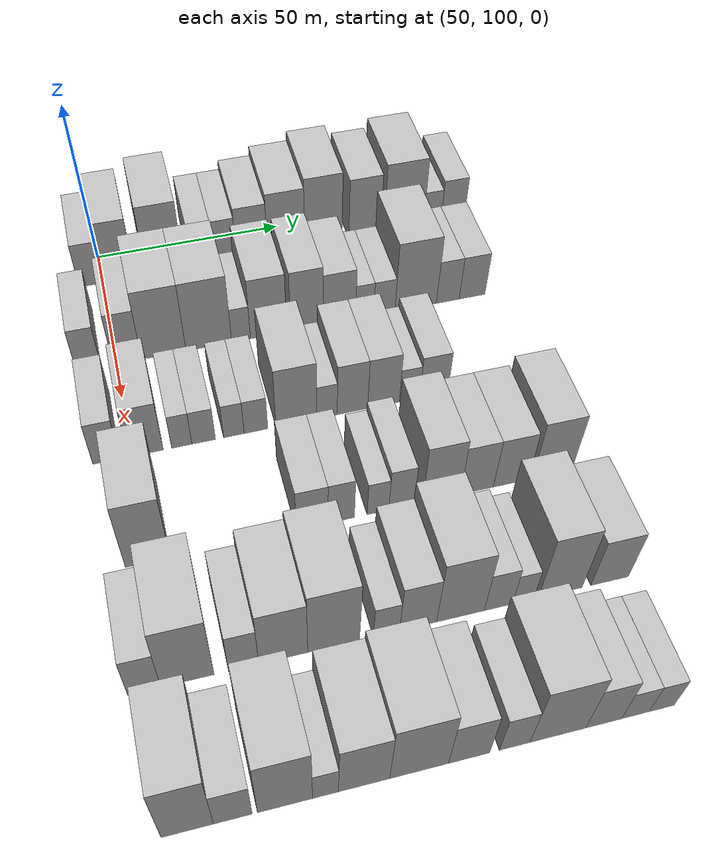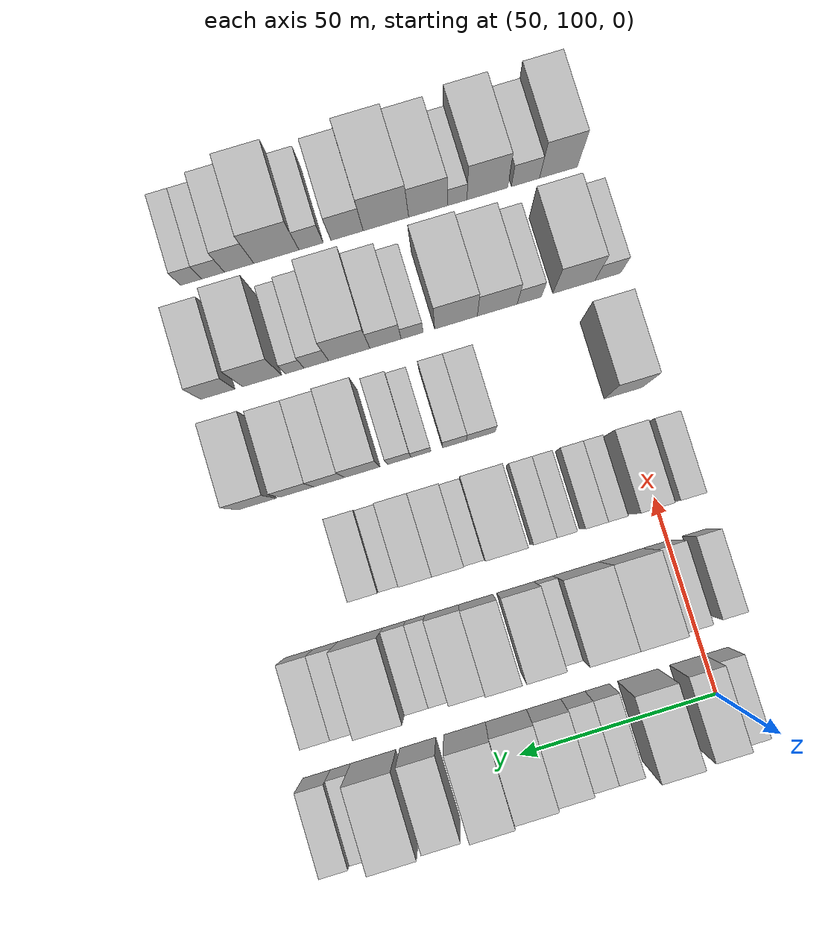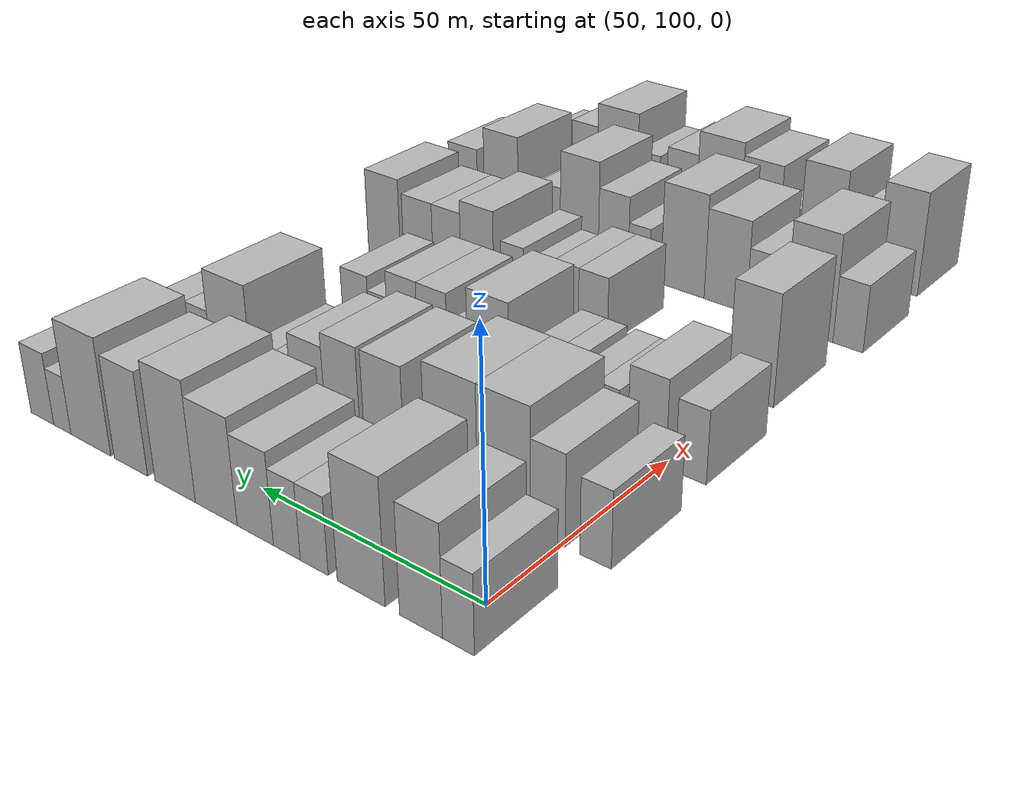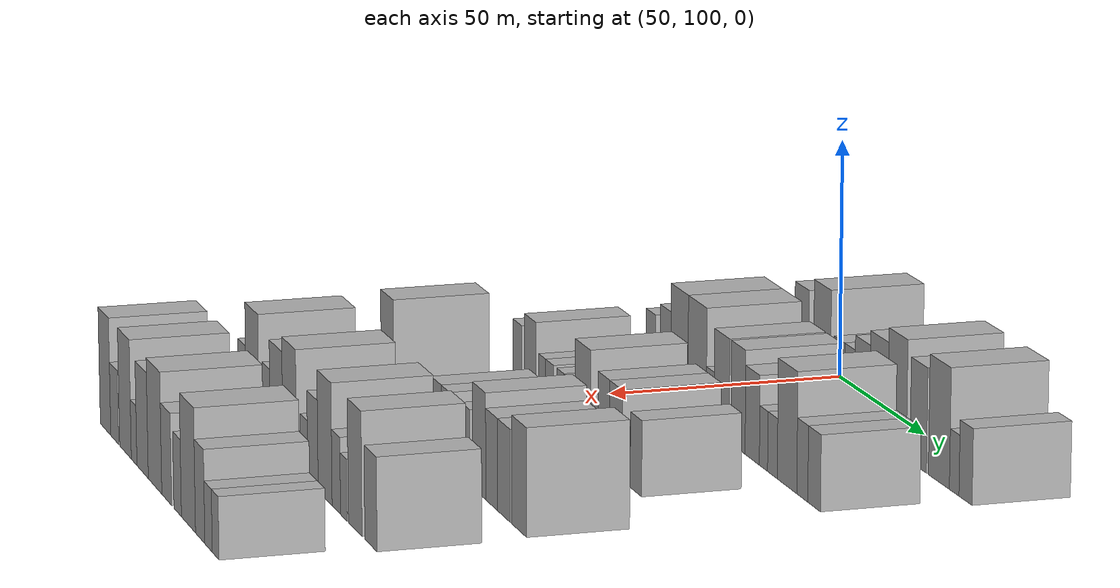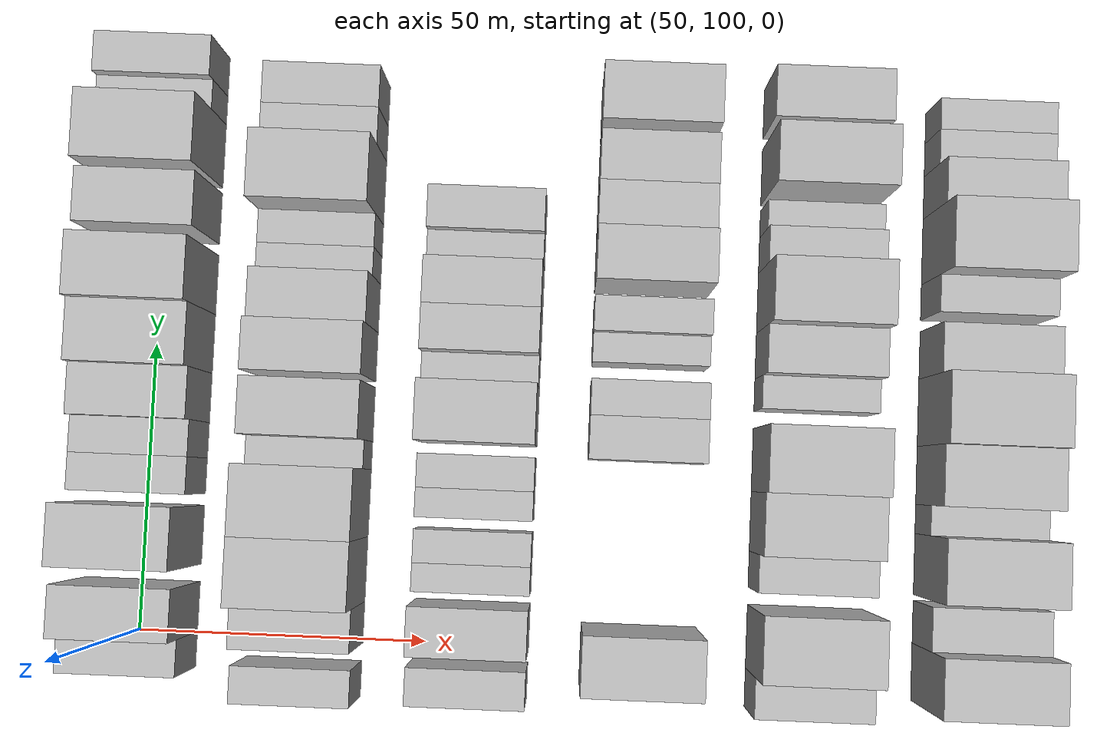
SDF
<sdf version="1.6">
 <world name="default">
  <model name="building_73">
   <static>1</static>
   <pose>50.0000 96.9267 0 0.000000 0.000000 0.000000</pose>
   <link name="link">
    <pose>0 0 7.50 0 0 0</pose>
    <collision name="collision"><geometry><box><size>20.0000 6.2108 15.0000</size></box></geometry></collision>
    <visual name="visual">
     <cast_shadows>0</cast_shadows>
     <geometry><box><size>20.0000 6.2108 15.0000</size></box></geometry>
     <material>
      <script>
       <uri>model://HANNAS_wall/materials/scripts</uri>
       <uri>model://HANNAS_wall/materials/textures</uri>
       <name>vrc/HANNAS_wall</name>
      </script>
     </material>
    </visual>
   </link>
  </model>
  <model name="building_74">
   <static>1</static>
   <pose>50.0000 104.3939 0 0.000000 0.000000 0.000000</pose>
   <link name="link">
    <pose>0 0 10.50 0 0 0</pose>
    <collision name="collision"><geometry><box><size>20.0000 8.7235 21.0000</size></box></geometry></collision>
    <visual name="visual">
     <cast_shadows>0</cast_shadows>
     <geometry><box><size>20.0000 8.7235 21.0000</size></box></geometry>
     <material>
      <script>
       <uri>model://HANNAS_wall/materials/scripts</uri>
       <uri>model://HANNAS_wall/materials/textures</uri>
       <name>vrc/HANNAS_wall</name>
      </script>
     </material>
    </visual>
   </link>
  </model>
  <model name="building_75">
   <static>1</static>
   <pose>50.0000 116.9098 0 0.000000 0.000000 0.000000</pose>
   <link name="link">
    <pose>0 0 12.00 0 0 0</pose>
    <collision name="collision"><geometry><box><size>20.0000 10.3083 24.0000</size></box></geometry></collision>
    <visual name="visual">
     <cast_shadows>0</cast_shadows>
     <geometry><box><size>20.0000 10.3083 24.0000</size></box></geometry>
     <material>
      <script>
       <uri>model://HANNAS_wall/materials/scripts</uri>
       <uri>model://HANNAS_wall/materials/textures</uri>
       <name>vrc/HANNAS_wall</name>
      </script>
     </material>
    </visual>
   </link>
  </model>
  <model name="building_76">
   <static>1</static>
   <pose>50.0000 127.2077 0 0.000000 0.000000 0.000000</pose>
   <link name="link">
    <pose>0 0 7.50 0 0 0</pose>
    <collision name="collision"><geometry><box><size>20.0000 6.2875 15.0000</size></box></geometry></collision>
    <visual name="visual">
     <cast_shadows>0</cast_shadows>
     <geometry><box><size>20.0000 6.2875 15.0000</size></box></geometry>
     <material>
      <script>
       <uri>model://HANNAS_wall/materials/scripts</uri>
       <uri>model://HANNAS_wall/materials/textures</uri>
       <name>vrc/HANNAS_wall</name>
      </script>
     </material>
    </visual>
   </link>
  </model>
  <model name="building_77">
   <static>1</static>
   <pose>50.0000 133.4709 0 0.000000 0.000000 0.000000</pose>
   <link name="link">
    <pose>0 0 7.50 0 0 0</pose>
    <collision name="collision"><geometry><box><size>20.0000 6.2390 15.0000</size></box></geometry></collision>
    <visual name="visual">
     <cast_shadows>0</cast_shadows>
     <geometry><box><size>20.0000 6.2390 15.0000</size></box></geometry>
     <material>
      <script>
       <uri>model://HANNAS_wall/materials/scripts</uri>
       <uri>model://HANNAS_wall/materials/textures</uri>
       <name>vrc/HANNAS_wall</name>
      </script>
     </material>
    </visual>
   </link>
  </model>
  <model name="building_78">
   <static>1</static>
   <pose>50.0000 140.9445 0 0.000000 0.000000 0.000000</pose>
   <link name="link">
    <pose>0 0 9.00 0 0 0</pose>
    <collision name="collision"><geometry><box><size>20.0000 8.7082 18.0000</size></box></geometry></collision>
    <visual name="visual">
     <cast_shadows>0</cast_shadows>
     <geometry><box><size>20.0000 8.7082 18.0000</size></box></geometry>
     <material>
      <script>
       <uri>model://HANNAS_wall/materials/scripts</uri>
       <uri>model://HANNAS_wall/materials/textures</uri>
       <name>vrc/HANNAS_wall</name>
      </script>
     </material>
    </visual>
   </link>
  </model>
  <model name="building_79">
   <static>1</static>
   <pose>50.0000 150.5302 0 0.000000 0.000000 0.000000</pose>
   <link name="link">
    <pose>0 0 10.50 0 0 0</pose>
    <collision name="collision"><geometry><box><size>20.0000 10.4632 21.0000</size></box></geometry></collision>
    <visual name="visual">
     <cast_shadows>0</cast_shadows>
     <geometry><box><size>20.0000 10.4632 21.0000</size></box></geometry>
     <material>
      <script>
       <uri>model://HANNAS_wall/materials/scripts</uri>
       <uri>model://HANNAS_wall/materials/textures</uri>
       <name>vrc/HANNAS_wall</name>
      </script>
     </material>
    </visual>
   </link>
  </model>
  <model name="building_80">
   <static>1</static>
   <pose>50.0000 161.0523 0 0.000000 0.000000 0.000000</pose>
   <link name="link">
    <pose>0 0 12.00 0 0 0</pose>
    <collision name="collision"><geometry><box><size>20.0000 10.5809 24.0000</size></box></geometry></collision>
    <visual name="visual">
     <cast_shadows>0</cast_shadows>
     <geometry><box><size>20.0000 10.5809 24.0000</size></box></geometry>
     <material>
      <script>
       <uri>model://HANNAS_wall/materials/scripts</uri>
       <uri>model://HANNAS_wall/materials/textures</uri>
       <name>vrc/HANNAS_wall</name>
      </script>
     </material>
    </visual>
   </link>
  </model>
  <model name="building_81">
   <static>1</static>
   <pose>50.0000 172.9133 0 0.000000 0.000000 0.000000</pose>
   <link name="link">
    <pose>0 0 10.50 0 0 0</pose>
    <collision name="collision"><geometry><box><size>20.0000 9.1411 21.0000</size></box></geometry></collision>
    <visual name="visual">
     <cast_shadows>0</cast_shadows>
     <geometry><box><size>20.0000 9.1411 21.0000</size></box></geometry>
     <material>
      <script>
       <uri>model://HANNAS_wall/materials/scripts</uri>
       <uri>model://HANNAS_wall/materials/textures</uri>
       <name>vrc/HANNAS_wall</name>
      </script>
     </material>
    </visual>
   </link>
  </model>
  <model name="building_82">
   <static>1</static>
   <pose>50.0000 184.2005 0 0.000000 0.000000 0.000000</pose>
   <link name="link">
    <pose>0 0 12.00 0 0 0</pose>
    <collision name="collision"><geometry><box><size>20.0000 11.4332 24.0000</size></box></geometry></collision>
    <visual name="visual">
     <cast_shadows>0</cast_shadows>
     <geometry><box><size>20.0000 11.4332 24.0000</size></box></geometry>
     <material>
      <script>
       <uri>model://HANNAS_wall/materials/scripts</uri>
       <uri>model://HANNAS_wall/materials/textures</uri>
       <name>vrc/HANNAS_wall</name>
      </script>
     </material>
    </visual>
   </link>
  </model>
  <model name="building_83">
   <static>1</static>
   <pose>50.0000 192.4809 0 0.000000 0.000000 0.000000</pose>
   <link name="link">
    <pose>0 0 6.00 0 0 0</pose>
    <collision name="collision"><geometry><box><size>20.0000 5.1277 12.0000</size></box></geometry></collision>
    <visual name="visual">
     <cast_shadows>0</cast_shadows>
     <geometry><box><size>20.0000 5.1277 12.0000</size></box></geometry>
     <material>
      <script>
       <uri>model://HANNAS_wall/materials/scripts</uri>
       <uri>model://HANNAS_wall/materials/textures</uri>
       <name>vrc/HANNAS_wall</name>
      </script>
     </material>
    </visual>
   </link>
  </model>
  <model name="building_84">
   <static>1</static>
   <pose>50.0000 198.5051 0 0.000000 0.000000 0.000000</pose>
   <link name="link">
    <pose>0 0 7.50 0 0 0</pose>
    <collision name="collision"><geometry><box><size>20.0000 6.9208 15.0000</size></box></geometry></collision>
    <visual name="visual">
     <cast_shadows>0</cast_shadows>
     <geometry><box><size>20.0000 6.9208 15.0000</size></box></geometry>
     <material>
      <script>
       <uri>model://HANNAS_wall/materials/scripts</uri>
       <uri>model://HANNAS_wall/materials/textures</uri>
       <name>vrc/HANNAS_wall</name>
      </script>
     </material>
    </visual>
   </link>
  </model>
  <model name="building_189">
   <static>1</static>
   <pose>79.0000 93.0959 0 0.000000 0.000000 0.000000</pose>
   <link name="link">
    <pose>0 0 7.50 0 0 0</pose>
    <collision name="collision"><geometry><box><size>20.0000 6.2312 15.0000</size></box></geometry></collision>
    <visual name="visual">
     <cast_shadows>0</cast_shadows>
     <geometry><box><size>20.0000 6.2312 15.0000</size></box></geometry>
     <material>
      <script>
       <uri>model://HANNAS_wall/materials/scripts</uri>
       <uri>model://HANNAS_wall/materials/textures</uri>
       <name>vrc/HANNAS_wall</name>
      </script>
     </material>
    </visual>
   </link>
  </model>
  <model name="building_190">
   <static>1</static>
   <pose>79.0000 102.8193 0 0.000000 0.000000 0.000000</pose>
   <link name="link">
    <pose>0 0 9.00 0 0 0</pose>
    <collision name="collision"><geometry><box><size>20.0000 7.2157 18.0000</size></box></geometry></collision>
    <visual name="visual">
     <cast_shadows>0</cast_shadows>
     <geometry><box><size>20.0000 7.2157 18.0000</size></box></geometry>
     <material>
      <script>
       <uri>model://HANNAS_wall/materials/scripts</uri>
       <uri>model://HANNAS_wall/materials/textures</uri>
       <name>vrc/HANNAS_wall</name>
      </script>
     </material>
    </visual>
   </link>
  </model>
  <model name="building_191">
   <static>1</static>
   <pose>79.0000 112.0889 0 0.000000 0.000000 0.000000</pose>
   <link name="link">
    <pose>0 0 12.00 0 0 0</pose>
    <collision name="collision"><geometry><box><size>20.0000 11.3235 24.0000</size></box></geometry></collision>
    <visual name="visual">
     <cast_shadows>0</cast_shadows>
     <geometry><box><size>20.0000 11.3235 24.0000</size></box></geometry>
     <material>
      <script>
       <uri>model://HANNAS_wall/materials/scripts</uri>
       <uri>model://HANNAS_wall/materials/textures</uri>
       <name>vrc/HANNAS_wall</name>
      </script>
     </material>
    </visual>
   </link>
  </model>
  <model name="building_192">
   <static>1</static>
   <pose>79.0000 123.6614 0 0.000000 0.000000 0.000000</pose>
   <link name="link">
    <pose>0 0 12.00 0 0 0</pose>
    <collision name="collision"><geometry><box><size>20.0000 11.8215 24.0000</size></box></geometry></collision>
    <visual name="visual">
     <cast_shadows>0</cast_shadows>
     <geometry><box><size>20.0000 11.8215 24.0000</size></box></geometry>
     <material>
      <script>
       <uri>model://HANNAS_wall/materials/scripts</uri>
       <uri>model://HANNAS_wall/materials/textures</uri>
       <name>vrc/HANNAS_wall</name>
      </script>
     </material>
    </visual>
   </link>
  </model>
  <model name="building_193">
   <static>1</static>
   <pose>79.0000 132.0098 0 0.000000 0.000000 0.000000</pose>
   <link name="link">
    <pose>0 0 6.00 0 0 0</pose>
    <collision name="collision"><geometry><box><size>20.0000 4.8754 12.0000</size></box></geometry></collision>
    <visual name="visual">
     <cast_shadows>0</cast_shadows>
     <geometry><box><size>20.0000 4.8754 12.0000</size></box></geometry>
     <material>
      <script>
       <uri>model://HANNAS_wall/materials/scripts</uri>
       <uri>model://HANNAS_wall/materials/textures</uri>
       <name>vrc/HANNAS_wall</name>
      </script>
     </material>
    </visual>
   </link>
  </model>
  <model name="building_194">
   <static>1</static>
   <pose>79.0000 139.2246 0 0.000000 0.000000 0.000000</pose>
   <link name="link">
    <pose>0 0 10.50 0 0 0</pose>
    <collision name="collision"><geometry><box><size>20.0000 9.5541 21.0000</size></box></geometry></collision>
    <visual name="visual">
     <cast_shadows>0</cast_shadows>
     <geometry><box><size>20.0000 9.5541 21.0000</size></box></geometry>
     <material>
      <script>
       <uri>model://HANNAS_wall/materials/scripts</uri>
       <uri>model://HANNAS_wall/materials/textures</uri>
       <name>vrc/HANNAS_wall</name>
      </script>
     </material>
    </visual>
   </link>
  </model>
  <model name="building_195">
   <static>1</static>
   <pose>79.0000 149.3639 0 0.000000 0.000000 0.000000</pose>
   <link name="link">
    <pose>0 0 10.50 0 0 0</pose>
    <collision name="collision"><geometry><box><size>20.0000 8.7247 21.0000</size></box></geometry></collision>
    <visual name="visual">
     <cast_shadows>0</cast_shadows>
     <geometry><box><size>20.0000 8.7247 21.0000</size></box></geometry>
     <material>
      <script>
       <uri>model://HANNAS_wall/materials/scripts</uri>
       <uri>model://HANNAS_wall/materials/textures</uri>
       <name>vrc/HANNAS_wall</name>
      </script>
     </material>
    </visual>
   </link>
  </model>
  <model name="building_196">
   <static>1</static>
   <pose>79.0000 158.0523 0 0.000000 0.000000 0.000000</pose>
   <link name="link">
    <pose>0 0 9.00 0 0 0</pose>
    <collision name="collision"><geometry><box><size>20.0000 8.6521 18.0000</size></box></geometry></collision>
    <visual name="visual">
     <cast_shadows>0</cast_shadows>
     <geometry><box><size>20.0000 8.6521 18.0000</size></box></geometry>
     <material>
      <script>
       <uri>model://HANNAS_wall/materials/scripts</uri>
       <uri>model://HANNAS_wall/materials/textures</uri>
       <name>vrc/HANNAS_wall</name>
      </script>
     </material>
    </visual>
   </link>
  </model>
  <model name="building_197">
   <static>1</static>
   <pose>79.0000 164.8341 0 0.000000 0.000000 0.000000</pose>
   <link name="link">
    <pose>0 0 6.00 0 0 0</pose>
    <collision name="collision"><geometry><box><size>20.0000 4.9115 12.0000</size></box></geometry></collision>
    <visual name="visual">
     <cast_shadows>0</cast_shadows>
     <geometry><box><size>20.0000 4.9115 12.0000</size></box></geometry>
     <material>
      <script>
       <uri>model://HANNAS_wall/materials/scripts</uri>
       <uri>model://HANNAS_wall/materials/textures</uri>
       <name>vrc/HANNAS_wall</name>
      </script>
     </material>
    </visual>
   </link>
  </model>
  <model name="building_198">
   <static>1</static>
   <pose>79.0000 170.1693 0 0.000000 0.000000 0.000000</pose>
   <link name="link">
    <pose>0 0 6.00 0 0 0</pose>
    <collision name="collision"><geometry><box><size>20.0000 5.7589 12.0000</size></box></geometry></collision>
    <visual name="visual">
     <cast_shadows>0</cast_shadows>
     <geometry><box><size>20.0000 5.7589 12.0000</size></box></geometry>
     <material>
      <script>
       <uri>model://HANNAS_wall/materials/scripts</uri>
       <uri>model://HANNAS_wall/materials/textures</uri>
       <name>vrc/HANNAS_wall</name>
      </script>
     </material>
    </visual>
   </link>
  </model>
  <model name="building_199">
   <static>1</static>
   <pose>79.0000 178.7368 0 0.000000 0.000000 0.000000</pose>
   <link name="link">
    <pose>0 0 12.00 0 0 0</pose>
    <collision name="collision"><geometry><box><size>20.0000 11.3760 24.0000</size></box></geometry></collision>
    <visual name="visual">
     <cast_shadows>0</cast_shadows>
     <geometry><box><size>20.0000 11.3760 24.0000</size></box></geometry>
     <material>
      <script>
       <uri>model://HANNAS_wall/materials/scripts</uri>
       <uri>model://HANNAS_wall/materials/textures</uri>
       <name>vrc/HANNAS_wall</name>
      </script>
     </material>
    </visual>
   </link>
  </model>
  <model name="building_200">
   <static>1</static>
   <pose>79.0000 187.5918 0 0.000000 0.000000 0.000000</pose>
   <link name="link">
    <pose>0 0 7.50 0 0 0</pose>
    <collision name="collision"><geometry><box><size>20.0000 6.3340 15.0000</size></box></geometry></collision>
    <visual name="visual">
     <cast_shadows>0</cast_shadows>
     <geometry><box><size>20.0000 6.3340 15.0000</size></box></geometry>
     <material>
      <script>
       <uri>model://HANNAS_wall/materials/scripts</uri>
       <uri>model://HANNAS_wall/materials/textures</uri>
       <name>vrc/HANNAS_wall</name>
      </script>
     </material>
    </visual>
   </link>
  </model>
  <model name="building_201">
   <static>1</static>
   <pose>79.0000 194.3425 0 0.000000 0.000000 0.000000</pose>
   <link name="link">
    <pose>0 0 7.50 0 0 0</pose>
    <collision name="collision"><geometry><box><size>20.0000 7.1674 15.0000</size></box></geometry></collision>
    <visual name="visual">
     <cast_shadows>0</cast_shadows>
     <geometry><box><size>20.0000 7.1674 15.0000</size></box></geometry>
     <material>
      <script>
       <uri>model://HANNAS_wall/materials/scripts</uri>
       <uri>model://HANNAS_wall/materials/textures</uri>
       <name>vrc/HANNAS_wall</name>
      </script>
     </material>
    </visual>
   </link>
  </model>
  <model name="building_307">
   <static>1</static>
   <pose>108.0000 93.9446 0 0.000000 0.000000 0.000000</pose>
   <link name="link">
    <pose>0 0 7.50 0 0 0</pose>
    <collision name="collision"><geometry><box><size>20.0000 6.3763 15.0000</size></box></geometry></collision>
    <visual name="visual">
     <cast_shadows>0</cast_shadows>
     <geometry><box><size>20.0000 6.3763 15.0000</size></box></geometry>
     <material>
      <script>
       <uri>model://HANNAS_wall/materials/scripts</uri>
       <uri>model://HANNAS_wall/materials/textures</uri>
       <name>vrc/HANNAS_wall</name>
      </script>
     </material>
    </visual>
   </link>
  </model>
  <model name="building_308">
   <static>1</static>
   <pose>108.0000 103.2602 0 0.000000 0.000000 0.000000</pose>
   <link name="link">
    <pose>0 0 9.00 0 0 0</pose>
    <collision name="collision"><geometry><box><size>20.0000 8.2549 18.0000</size></box></geometry></collision>
    <visual name="visual">
     <cast_shadows>0</cast_shadows>
     <geometry><box><size>20.0000 8.2549 18.0000</size></box></geometry>
     <material>
      <script>
       <uri>model://HANNAS_wall/materials/scripts</uri>
       <uri>model://HANNAS_wall/materials/textures</uri>
       <name>vrc/HANNAS_wall</name>
      </script>
     </material>
    </visual>
   </link>
  </model>
  <model name="building_309">
   <static>1</static>
   <pose>108.0000 111.8012 0 0.000000 0.000000 0.000000</pose>
   <link name="link">
    <pose>0 0 6.00 0 0 0</pose>
    <collision name="collision"><geometry><box><size>20.0000 4.8269 12.0000</size></box></geometry></collision>
    <visual name="visual">
     <cast_shadows>0</cast_shadows>
     <geometry><box><size>20.0000 4.8269 12.0000</size></box></geometry>
     <material>
      <script>
       <uri>model://HANNAS_wall/materials/scripts</uri>
       <uri>model://HANNAS_wall/materials/textures</uri>
       <name>vrc/HANNAS_wall</name>
      </script>
     </material>
    </visual>
   </link>
  </model>
  <model name="building_310">
   <static>1</static>
   <pose>108.0000 117.0508 0 0.000000 0.000000 0.000000</pose>
   <link name="link">
    <pose>0 0 6.00 0 0 0</pose>
    <collision name="collision"><geometry><box><size>20.0000 5.6724 12.0000</size></box></geometry></collision>
    <visual name="visual">
     <cast_shadows>0</cast_shadows>
     <geometry><box><size>20.0000 5.6724 12.0000</size></box></geometry>
     <material>
      <script>
       <uri>model://HANNAS_wall/materials/scripts</uri>
       <uri>model://HANNAS_wall/materials/textures</uri>
       <name>vrc/HANNAS_wall</name>
      </script>
     </material>
    </visual>
   </link>
  </model>
  <model name="building_311">
   <static>1</static>
   <pose>108.0000 124.3811 0 0.000000 0.000000 0.000000</pose>
   <link name="link">
    <pose>0 0 6.00 0 0 0</pose>
    <collision name="collision"><geometry><box><size>20.0000 4.9883 12.0000</size></box></geometry></collision>
    <visual name="visual">
     <cast_shadows>0</cast_shadows>
     <geometry><box><size>20.0000 4.9883 12.0000</size></box></geometry>
     <material>
      <script>
       <uri>model://HANNAS_wall/materials/scripts</uri>
       <uri>model://HANNAS_wall/materials/textures</uri>
       <name>vrc/HANNAS_wall</name>
      </script>
     </material>
    </visual>
   </link>
  </model>
  <model name="building_312">
   <static>1</static>
   <pose>108.0000 129.7592 0 0.000000 0.000000 0.000000</pose>
   <link name="link">
    <pose>0 0 6.00 0 0 0</pose>
    <collision name="collision"><geometry><box><size>20.0000 5.7679 12.0000</size></box></geometry></collision>
    <visual name="visual">
     <cast_shadows>0</cast_shadows>
     <geometry><box><size>20.0000 5.7679 12.0000</size></box></geometry>
     <material>
      <script>
       <uri>model://HANNAS_wall/materials/scripts</uri>
       <uri>model://HANNAS_wall/materials/textures</uri>
       <name>vrc/HANNAS_wall</name>
      </script>
     </material>
    </visual>
   </link>
  </model>
  <model name="building_313">
   <static>1</static>
   <pose>108.0000 139.7160 0 0.000000 0.000000 0.000000</pose>
   <link name="link">
    <pose>0 0 10.50 0 0 0</pose>
    <collision name="collision"><geometry><box><size>20.0000 10.1457 21.0000</size></box></geometry></collision>
    <visual name="visual">
     <cast_shadows>0</cast_shadows>
     <geometry><box><size>20.0000 10.1457 21.0000</size></box></geometry>
     <material>
      <script>
       <uri>model://HANNAS_wall/materials/scripts</uri>
       <uri>model://HANNAS_wall/materials/textures</uri>
       <name>vrc/HANNAS_wall</name>
      </script>
     </material>
    </visual>
   </link>
  </model>
  <model name="building_314">
   <static>1</static>
   <pose>108.0000 147.3253 0 0.000000 0.000000 0.000000</pose>
   <link name="link">
    <pose>0 0 6.00 0 0 0</pose>
    <collision name="collision"><geometry><box><size>20.0000 5.0729 12.0000</size></box></geometry></collision>
    <visual name="visual">
     <cast_shadows>0</cast_shadows>
     <geometry><box><size>20.0000 5.0729 12.0000</size></box></geometry>
     <material>
      <script>
       <uri>model://HANNAS_wall/materials/scripts</uri>
       <uri>model://HANNAS_wall/materials/textures</uri>
       <name>vrc/HANNAS_wall</name>
      </script>
     </material>
    </visual>
   </link>
  </model>
  <model name="building_315">
   <static>1</static>
   <pose>108.0000 153.6986 0 0.000000 0.000000 0.000000</pose>
   <link name="link">
    <pose>0 0 9.00 0 0 0</pose>
    <collision name="collision"><geometry><box><size>20.0000 7.6736 18.0000</size></box></geometry></collision>
    <visual name="visual">
     <cast_shadows>0</cast_shadows>
     <geometry><box><size>20.0000 7.6736 18.0000</size></box></geometry>
     <material>
      <script>
       <uri>model://HANNAS_wall/materials/scripts</uri>
       <uri>model://HANNAS_wall/materials/textures</uri>
       <name>vrc/HANNAS_wall</name>
      </script>
     </material>
    </visual>
   </link>
  </model>
  <model name="building_316">
   <static>1</static>
   <pose>108.0000 161.5365 0 0.000000 0.000000 0.000000</pose>
   <link name="link">
    <pose>0 0 9.00 0 0 0</pose>
    <collision name="collision"><geometry><box><size>20.0000 8.0022 18.0000</size></box></geometry></collision>
    <visual name="visual">
     <cast_shadows>0</cast_shadows>
     <geometry><box><size>20.0000 8.0022 18.0000</size></box></geometry>
     <material>
      <script>
       <uri>model://HANNAS_wall/materials/scripts</uri>
       <uri>model://HANNAS_wall/materials/textures</uri>
       <name>vrc/HANNAS_wall</name>
      </script>
     </material>
    </visual>
   </link>
  </model>
  <model name="building_317">
   <static>1</static>
   <pose>108.0000 168.1276 0 0.000000 0.000000 0.000000</pose>
   <link name="link">
    <pose>0 0 6.00 0 0 0</pose>
    <collision name="collision"><geometry><box><size>20.0000 5.1800 12.0000</size></box></geometry></collision>
    <visual name="visual">
     <cast_shadows>0</cast_shadows>
     <geometry><box><size>20.0000 5.1800 12.0000</size></box></geometry>
     <material>
      <script>
       <uri>model://HANNAS_wall/materials/scripts</uri>
       <uri>model://HANNAS_wall/materials/textures</uri>
       <name>vrc/HANNAS_wall</name>
      </script>
     </material>
    </visual>
   </link>
  </model>
  <model name="building_318">
   <static>1</static>
   <pose>108.0000 174.3481 0 0.000000 0.000000 0.000000</pose>
   <link name="link">
    <pose>0 0 7.50 0 0 0</pose>
    <collision name="collision"><geometry><box><size>20.0000 7.2610 15.0000</size></box></geometry></collision>
    <visual name="visual">
     <cast_shadows>0</cast_shadows>
     <geometry><box><size>20.0000 7.2610 15.0000</size></box></geometry>
     <material>
      <script>
       <uri>model://HANNAS_wall/materials/scripts</uri>
       <uri>model://HANNAS_wall/materials/textures</uri>
       <name>vrc/HANNAS_wall</name>
      </script>
     </material>
    </visual>
   </link>
  </model>
  <model name="building_421">
   <static>1</static>
   <pose>137.0000 99.4544 0 0.000000 0.000000 0.000000</pose>
   <link name="link">
    <pose>0 0 12.00 0 0 0</pose>
    <collision name="collision"><geometry><box><size>20.0000 9.9275 24.0000</size></box></geometry></collision>
    <visual name="visual">
     <cast_shadows>0</cast_shadows>
     <geometry><box><size>20.0000 9.9275 24.0000</size></box></geometry>
     <material>
      <script>
       <uri>model://HANNAS_wall/materials/scripts</uri>
       <uri>model://HANNAS_wall/materials/textures</uri>
       <name>vrc/HANNAS_wall</name>
      </script>
     </material>
    </visual>
   </link>
  </model>
  <model name="building_422">
   <static>1</static>
   <pose>137.0000 136.4738 0 0.000000 0.000000 0.000000</pose>
   <link name="link">
    <pose>0 0 7.50 0 0 0</pose>
    <collision name="collision"><geometry><box><size>20.0000 7.3704 15.0000</size></box></geometry></collision>
    <visual name="visual">
     <cast_shadows>0</cast_shadows>
     <geometry><box><size>20.0000 7.3704 15.0000</size></box></geometry>
     <material>
      <script>
       <uri>model://HANNAS_wall/materials/scripts</uri>
       <uri>model://HANNAS_wall/materials/textures</uri>
       <name>vrc/HANNAS_wall</name>
      </script>
     </material>
    </visual>
   </link>
  </model>
  <model name="building_423">
   <static>1</static>
   <pose>137.0000 143.2211 0 0.000000 0.000000 0.000000</pose>
   <link name="link">
    <pose>0 0 7.50 0 0 0</pose>
    <collision name="collision"><geometry><box><size>20.0000 6.1243 15.0000</size></box></geometry></collision>
    <visual name="visual">
     <cast_shadows>0</cast_shadows>
     <geometry><box><size>20.0000 6.1243 15.0000</size></box></geometry>
     <material>
      <script>
       <uri>model://HANNAS_wall/materials/scripts</uri>
       <uri>model://HANNAS_wall/materials/textures</uri>
       <name>vrc/HANNAS_wall</name>
      </script>
     </material>
    </visual>
   </link>
  </model>
  <model name="building_424">
   <static>1</static>
   <pose>137.0000 151.8274 0 0.000000 0.000000 0.000000</pose>
   <link name="link">
    <pose>0 0 6.00 0 0 0</pose>
    <collision name="collision"><geometry><box><size>20.0000 5.0883 12.0000</size></box></geometry></collision>
    <visual name="visual">
     <cast_shadows>0</cast_shadows>
     <geometry><box><size>20.0000 5.0883 12.0000</size></box></geometry>
     <material>
      <script>
       <uri>model://HANNAS_wall/materials/scripts</uri>
       <uri>model://HANNAS_wall/materials/textures</uri>
       <name>vrc/HANNAS_wall</name>
      </script>
     </material>
    </visual>
   </link>
  </model>
  <model name="building_425">
   <static>1</static>
   <pose>137.0000 157.3728 0 0.000000 0.000000 0.000000</pose>
   <link name="link">
    <pose>0 0 7.50 0 0 0</pose>
    <collision name="collision"><geometry><box><size>20.0000 6.0025 15.0000</size></box></geometry></collision>
    <visual name="visual">
     <cast_shadows>0</cast_shadows>
     <geometry><box><size>20.0000 6.0025 15.0000</size></box></geometry>
     <material>
      <script>
       <uri>model://HANNAS_wall/materials/scripts</uri>
       <uri>model://HANNAS_wall/materials/textures</uri>
       <name>vrc/HANNAS_wall</name>
      </script>
     </material>
    </visual>
   </link>
  </model>
  <model name="building_426">
   <static>1</static>
   <pose>137.0000 166.9204 0 0.000000 0.000000 0.000000</pose>
   <link name="link">
    <pose>0 0 10.50 0 0 0</pose>
    <collision name="collision"><geometry><box><size>20.0000 9.0926 21.0000</size></box></geometry></collision>
    <visual name="visual">
     <cast_shadows>0</cast_shadows>
     <geometry><box><size>20.0000 9.0926 21.0000</size></box></geometry>
     <material>
      <script>
       <uri>model://HANNAS_wall/materials/scripts</uri>
       <uri>model://HANNAS_wall/materials/textures</uri>
       <name>vrc/HANNAS_wall</name>
      </script>
     </material>
    </visual>
   </link>
  </model>
  <model name="building_427">
   <static>1</static>
   <pose>137.0000 175.4635 0 0.000000 0.000000 0.000000</pose>
   <link name="link">
    <pose>0 0 9.00 0 0 0</pose>
    <collision name="collision"><geometry><box><size>20.0000 7.9936 18.0000</size></box></geometry></collision>
    <visual name="visual">
     <cast_shadows>0</cast_shadows>
     <geometry><box><size>20.0000 7.9936 18.0000</size></box></geometry>
     <material>
      <script>
       <uri>model://HANNAS_wall/materials/scripts</uri>
       <uri>model://HANNAS_wall/materials/textures</uri>
       <name>vrc/HANNAS_wall</name>
      </script>
     </material>
    </visual>
   </link>
  </model>
  <model name="building_428">
   <static>1</static>
   <pose>137.0000 183.7638 0 0.000000 0.000000 0.000000</pose>
   <link name="link">
    <pose>0 0 9.00 0 0 0</pose>
    <collision name="collision"><geometry><box><size>20.0000 8.6069 18.0000</size></box></geometry></collision>
    <visual name="visual">
     <cast_shadows>0</cast_shadows>
     <geometry><box><size>20.0000 8.6069 18.0000</size></box></geometry>
     <material>
      <script>
       <uri>model://HANNAS_wall/materials/scripts</uri>
       <uri>model://HANNAS_wall/materials/textures</uri>
       <name>vrc/HANNAS_wall</name>
      </script>
     </material>
    </visual>
   </link>
  </model>
  <model name="building_429">
   <static>1</static>
   <pose>137.0000 193.9505 0 0.000000 0.000000 0.000000</pose>
   <link name="link">
    <pose>0 0 10.50 0 0 0</pose>
    <collision name="collision"><geometry><box><size>20.0000 9.7665 21.0000</size></box></geometry></collision>
    <visual name="visual">
     <cast_shadows>0</cast_shadows>
     <geometry><box><size>20.0000 9.7665 21.0000</size></box></geometry>
     <material>
      <script>
       <uri>model://HANNAS_wall/materials/scripts</uri>
       <uri>model://HANNAS_wall/materials/textures</uri>
       <name>vrc/HANNAS_wall</name>
      </script>
     </material>
    </visual>
   </link>
  </model>
  <model name="building_533">
   <static>1</static>
   <pose>166.0000 94.3954 0 0.000000 0.000000 0.000000</pose>
   <link name="link">
    <pose>0 0 7.50 0 0 0</pose>
    <collision name="collision"><geometry><box><size>20.0000 6.7273 15.0000</size></box></geometry></collision>
    <visual name="visual">
     <cast_shadows>0</cast_shadows>
     <geometry><box><size>20.0000 6.7273 15.0000</size></box></geometry>
     <material>
      <script>
       <uri>model://HANNAS_wall/materials/scripts</uri>
       <uri>model://HANNAS_wall/materials/textures</uri>
       <name>vrc/HANNAS_wall</name>
      </script>
     </material>
    </visual>
   </link>
  </model>
  <model name="building_534">
   <static>1</static>
   <pose>166.0000 103.2549 0 0.000000 0.000000 0.000000</pose>
   <link name="link">
    <pose>0 0 12.00 0 0 0</pose>
    <collision name="collision"><geometry><box><size>20.0000 10.9916 24.0000</size></box></geometry></collision>
    <visual name="visual">
     <cast_shadows>0</cast_shadows>
     <geometry><box><size>20.0000 10.9916 24.0000</size></box></geometry>
     <material>
      <script>
       <uri>model://HANNAS_wall/materials/scripts</uri>
       <uri>model://HANNAS_wall/materials/textures</uri>
       <name>vrc/HANNAS_wall</name>
      </script>
     </material>
    </visual>
   </link>
  </model>
  <model name="building_535">
   <static>1</static>
   <pose>166.0000 114.9008 0 0.000000 0.000000 0.000000</pose>
   <link name="link">
    <pose>0 0 7.50 0 0 0</pose>
    <collision name="collision"><geometry><box><size>20.0000 6.3002 15.0000</size></box></geometry></collision>
    <visual name="visual">
     <cast_shadows>0</cast_shadows>
     <geometry><box><size>20.0000 6.3002 15.0000</size></box></geometry>
     <material>
      <script>
       <uri>model://HANNAS_wall/materials/scripts</uri>
       <uri>model://HANNAS_wall/materials/textures</uri>
       <name>vrc/HANNAS_wall</name>
      </script>
     </material>
    </visual>
   </link>
  </model>
  <model name="building_536">
   <static>1</static>
   <pose>166.0000 123.2435 0 0.000000 0.000000 0.000000</pose>
   <link name="link">
    <pose>0 0 10.50 0 0 0</pose>
    <collision name="collision"><geometry><box><size>20.0000 10.3852 21.0000</size></box></geometry></collision>
    <visual name="visual">
     <cast_shadows>0</cast_shadows>
     <geometry><box><size>20.0000 10.3852 21.0000</size></box></geometry>
     <material>
      <script>
       <uri>model://HANNAS_wall/materials/scripts</uri>
       <uri>model://HANNAS_wall/materials/textures</uri>
       <name>vrc/HANNAS_wall</name>
      </script>
     </material>
    </visual>
   </link>
  </model>
  <model name="building_537">
   <static>1</static>
   <pose>166.0000 133.9880 0 0.000000 0.000000 0.000000</pose>
   <link name="link">
    <pose>0 0 12.00 0 0 0</pose>
    <collision name="collision"><geometry><box><size>20.0000 11.1040 24.0000</size></box></geometry></collision>
    <visual name="visual">
     <cast_shadows>0</cast_shadows>
     <geometry><box><size>20.0000 11.1040 24.0000</size></box></geometry>
     <material>
      <script>
       <uri>model://HANNAS_wall/materials/scripts</uri>
       <uri>model://HANNAS_wall/materials/textures</uri>
       <name>vrc/HANNAS_wall</name>
      </script>
     </material>
    </visual>
   </link>
  </model>
  <model name="building_538">
   <static>1</static>
   <pose>166.0000 145.3848 0 0.000000 0.000000 0.000000</pose>
   <link name="link">
    <pose>0 0 6.00 0 0 0</pose>
    <collision name="collision"><geometry><box><size>20.0000 5.6894 12.0000</size></box></geometry></collision>
    <visual name="visual">
     <cast_shadows>0</cast_shadows>
     <geometry><box><size>20.0000 5.6894 12.0000</size></box></geometry>
     <material>
      <script>
       <uri>model://HANNAS_wall/materials/scripts</uri>
       <uri>model://HANNAS_wall/materials/textures</uri>
       <name>vrc/HANNAS_wall</name>
      </script>
     </material>
    </visual>
   </link>
  </model>
  <model name="building_539">
   <static>1</static>
   <pose>166.0000 152.2951 0 0.000000 0.000000 0.000000</pose>
   <link name="link">
    <pose>0 0 9.00 0 0 0</pose>
    <collision name="collision"><geometry><box><size>20.0000 8.1312 18.0000</size></box></geometry></collision>
    <visual name="visual">
     <cast_shadows>0</cast_shadows>
     <geometry><box><size>20.0000 8.1312 18.0000</size></box></geometry>
     <material>
      <script>
       <uri>model://HANNAS_wall/materials/scripts</uri>
       <uri>model://HANNAS_wall/materials/textures</uri>
       <name>vrc/HANNAS_wall</name>
      </script>
     </material>
    </visual>
   </link>
  </model>
  <model name="building_540">
   <static>1</static>
   <pose>166.0000 161.6954 0 0.000000 0.000000 0.000000</pose>
   <link name="link">
    <pose>0 0 12.00 0 0 0</pose>
    <collision name="collision"><geometry><box><size>20.0000 10.6694 24.0000</size></box></geometry></collision>
    <visual name="visual">
     <cast_shadows>0</cast_shadows>
     <geometry><box><size>20.0000 10.6694 24.0000</size></box></geometry>
     <material>
      <script>
       <uri>model://HANNAS_wall/materials/scripts</uri>
       <uri>model://HANNAS_wall/materials/textures</uri>
       <name>vrc/HANNAS_wall</name>
      </script>
     </material>
    </visual>
   </link>
  </model>
  <model name="building_541">
   <static>1</static>
   <pose>166.0000 170.2016 0 0.000000 0.000000 0.000000</pose>
   <link name="link">
    <pose>0 0 7.50 0 0 0</pose>
    <collision name="collision"><geometry><box><size>20.0000 6.3430 15.0000</size></box></geometry></collision>
    <visual name="visual">
     <cast_shadows>0</cast_shadows>
     <geometry><box><size>20.0000 6.3430 15.0000</size></box></geometry>
     <material>
      <script>
       <uri>model://HANNAS_wall/materials/scripts</uri>
       <uri>model://HANNAS_wall/materials/textures</uri>
       <name>vrc/HANNAS_wall</name>
      </script>
     </material>
    </visual>
   </link>
  </model>
  <model name="building_542">
   <static>1</static>
   <pose>166.0000 175.8016 0 0.000000 0.000000 0.000000</pose>
   <link name="link">
    <pose>0 0 6.00 0 0 0</pose>
    <collision name="collision"><geometry><box><size>20.0000 4.8570 12.0000</size></box></geometry></collision>
    <visual name="visual">
     <cast_shadows>0</cast_shadows>
     <geometry><box><size>20.0000 4.8570 12.0000</size></box></geometry>
     <material>
      <script>
       <uri>model://HANNAS_wall/materials/scripts</uri>
       <uri>model://HANNAS_wall/materials/textures</uri>
       <name>vrc/HANNAS_wall</name>
      </script>
     </material>
    </visual>
   </link>
  </model>
  <model name="building_543">
   <static>1</static>
   <pose>166.0000 184.2693 0 0.000000 0.000000 0.000000</pose>
   <link name="link">
    <pose>0 0 12.00 0 0 0</pose>
    <collision name="collision"><geometry><box><size>20.0000 10.0784 24.0000</size></box></geometry></collision>
    <visual name="visual">
     <cast_shadows>0</cast_shadows>
     <geometry><box><size>20.0000 10.0784 24.0000</size></box></geometry>
     <material>
      <script>
       <uri>model://HANNAS_wall/materials/scripts</uri>
       <uri>model://HANNAS_wall/materials/textures</uri>
       <name>vrc/HANNAS_wall</name>
      </script>
     </material>
    </visual>
   </link>
  </model>
  <model name="building_544">
   <static>1</static>
   <pose>166.0000 195.7092 0 0.000000 0.000000 0.000000</pose>
   <link name="link">
    <pose>0 0 9.00 0 0 0</pose>
    <collision name="collision"><geometry><box><size>20.0000 8.8014 18.0000</size></box></geometry></collision>
    <visual name="visual">
     <cast_shadows>0</cast_shadows>
     <geometry><box><size>20.0000 8.8014 18.0000</size></box></geometry>
     <material>
      <script>
       <uri>model://HANNAS_wall/materials/scripts</uri>
       <uri>model://HANNAS_wall/materials/textures</uri>
       <name>vrc/HANNAS_wall</name>
      </script>
     </material>
    </visual>
   </link>
  </model>
  <model name="building_650">
   <static>1</static>
   <pose>195.0000 98.2661 0 0.000000 0.000000 0.000000</pose>
   <link name="link">
    <pose>0 0 12.00 0 0 0</pose>
    <collision name="collision"><geometry><box><size>20.0000 9.8999 24.0000</size></box></geometry></collision>
    <visual name="visual">
     <cast_shadows>0</cast_shadows>
     <geometry><box><size>20.0000 9.8999 24.0000</size></box></geometry>
     <material>
      <script>
       <uri>model://HANNAS_wall/materials/scripts</uri>
       <uri>model://HANNAS_wall/materials/textures</uri>
       <name>vrc/HANNAS_wall</name>
      </script>
     </material>
    </visual>
   </link>
  </model>
  <model name="building_651">
   <static>1</static>
   <pose>195.0000 106.9184 0 0.000000 0.000000 0.000000</pose>
   <link name="link">
    <pose>0 0 7.50 0 0 0</pose>
    <collision name="collision"><geometry><box><size>20.0000 7.4046 15.0000</size></box></geometry></collision>
    <visual name="visual">
     <cast_shadows>0</cast_shadows>
     <geometry><box><size>20.0000 7.4046 15.0000</size></box></geometry>
     <material>
      <script>
       <uri>model://HANNAS_wall/materials/scripts</uri>
       <uri>model://HANNAS_wall/materials/textures</uri>
       <name>vrc/HANNAS_wall</name>
      </script>
     </material>
    </visual>
   </link>
  </model>
  <model name="building_652">
   <static>1</static>
   <pose>195.0000 116.9656 0 0.000000 0.000000 0.000000</pose>
   <link name="link">
    <pose>0 0 12.00 0 0 0</pose>
    <collision name="collision"><geometry><box><size>20.0000 10.6899 24.0000</size></box></geometry></collision>
    <visual name="visual">
     <cast_shadows>0</cast_shadows>
     <geometry><box><size>20.0000 10.6899 24.0000</size></box></geometry>
     <material>
      <script>
       <uri>model://HANNAS_wall/materials/scripts</uri>
       <uri>model://HANNAS_wall/materials/textures</uri>
       <name>vrc/HANNAS_wall</name>
      </script>
     </material>
    </visual>
   </link>
  </model>
  <model name="building_653">
   <static>1</static>
   <pose>195.0000 124.8517 0 0.000000 0.000000 0.000000</pose>
   <link name="link">
    <pose>0 0 6.00 0 0 0</pose>
    <collision name="collision"><geometry><box><size>20.0000 5.0823 12.0000</size></box></geometry></collision>
    <visual name="visual">
     <cast_shadows>0</cast_shadows>
     <geometry><box><size>20.0000 5.0823 12.0000</size></box></geometry>
     <material>
      <script>
       <uri>model://HANNAS_wall/materials/scripts</uri>
       <uri>model://HANNAS_wall/materials/textures</uri>
       <name>vrc/HANNAS_wall</name>
      </script>
     </material>
    </visual>
   </link>
  </model>
  <model name="building_654">
   <static>1</static>
   <pose>195.0000 132.4877 0 0.000000 0.000000 0.000000</pose>
   <link name="link">
    <pose>0 0 10.50 0 0 0</pose>
    <collision name="collision"><geometry><box><size>20.0000 10.1897 21.0000</size></box></geometry></collision>
    <visual name="visual">
     <cast_shadows>0</cast_shadows>
     <geometry><box><size>20.0000 10.1897 21.0000</size></box></geometry>
     <material>
      <script>
       <uri>model://HANNAS_wall/materials/scripts</uri>
       <uri>model://HANNAS_wall/materials/textures</uri>
       <name>vrc/HANNAS_wall</name>
      </script>
     </material>
    </visual>
   </link>
  </model>
  <model name="building_655">
   <static>1</static>
   <pose>195.0000 143.5255 0 0.000000 0.000000 0.000000</pose>
   <link name="link">
    <pose>0 0 12.00 0 0 0</pose>
    <collision name="collision"><geometry><box><size>20.0000 11.8858 24.0000</size></box></geometry></collision>
    <visual name="visual">
     <cast_shadows>0</cast_shadows>
     <geometry><box><size>20.0000 11.8858 24.0000</size></box></geometry>
     <material>
      <script>
       <uri>model://HANNAS_wall/materials/scripts</uri>
       <uri>model://HANNAS_wall/materials/textures</uri>
       <name>vrc/HANNAS_wall</name>
      </script>
     </material>
    </visual>
   </link>
  </model>
  <model name="building_656">
   <static>1</static>
   <pose>195.0000 153.6804 0 0.000000 0.000000 0.000000</pose>
   <link name="link">
    <pose>0 0 9.00 0 0 0</pose>
    <collision name="collision"><geometry><box><size>20.0000 8.4240 18.0000</size></box></geometry></collision>
    <visual name="visual">
     <cast_shadows>0</cast_shadows>
     <geometry><box><size>20.0000 8.4240 18.0000</size></box></geometry>
     <material>
      <script>
       <uri>model://HANNAS_wall/materials/scripts</uri>
       <uri>model://HANNAS_wall/materials/textures</uri>
       <name>vrc/HANNAS_wall</name>
      </script>
     </material>
    </visual>
   </link>
  </model>
  <model name="building_657">
   <static>1</static>
   <pose>195.0000 163.0637 0 0.000000 0.000000 0.000000</pose>
   <link name="link">
    <pose>0 0 7.50 0 0 0</pose>
    <collision name="collision"><geometry><box><size>20.0000 6.3427 15.0000</size></box></geometry></collision>
    <visual name="visual">
     <cast_shadows>0</cast_shadows>
     <geometry><box><size>20.0000 6.3427 15.0000</size></box></geometry>
     <material>
      <script>
       <uri>model://HANNAS_wall/materials/scripts</uri>
       <uri>model://HANNAS_wall/materials/textures</uri>
       <name>vrc/HANNAS_wall</name>
      </script>
     </material>
    </visual>
   </link>
  </model>
  <model name="building_658">
   <static>1</static>
   <pose>195.0000 172.1156 0 0.000000 0.000000 0.000000</pose>
   <link name="link">
    <pose>0 0 12.00 0 0 0</pose>
    <collision name="collision"><geometry><box><size>20.0000 11.7612 24.0000</size></box></geometry></collision>
    <visual name="visual">
     <cast_shadows>0</cast_shadows>
     <geometry><box><size>20.0000 11.7612 24.0000</size></box></geometry>
     <material>
      <script>
       <uri>model://HANNAS_wall/materials/scripts</uri>
       <uri>model://HANNAS_wall/materials/textures</uri>
       <name>vrc/HANNAS_wall</name>
      </script>
     </material>
    </visual>
   </link>
  </model>
  <model name="building_659">
   <static>1</static>
   <pose>195.0000 181.8213 0 0.000000 0.000000 0.000000</pose>
   <link name="link">
    <pose>0 0 9.00 0 0 0</pose>
    <collision name="collision"><geometry><box><size>20.0000 7.6503 18.0000</size></box></geometry></collision>
    <visual name="visual">
     <cast_shadows>0</cast_shadows>
     <geometry><box><size>20.0000 7.6503 18.0000</size></box></geometry>
     <material>
      <script>
       <uri>model://HANNAS_wall/materials/scripts</uri>
       <uri>model://HANNAS_wall/materials/textures</uri>
       <name>vrc/HANNAS_wall</name>
      </script>
     </material>
    </visual>
   </link>
  </model>
  <model name="building_660">
   <static>1</static>
   <pose>195.0000 188.6347 0 0.000000 0.000000 0.000000</pose>
   <link name="link">
    <pose>0 0 6.00 0 0 0</pose>
    <collision name="collision"><geometry><box><size>20.0000 5.9764 12.0000</size></box></geometry></collision>
    <visual name="visual">
     <cast_shadows>0</cast_shadows>
     <geometry><box><size>20.0000 5.9764 12.0000</size></box></geometry>
     <material>
      <script>
       <uri>model://HANNAS_wall/materials/scripts</uri>
       <uri>model://HANNAS_wall/materials/textures</uri>
       <name>vrc/HANNAS_wall</name>
      </script>
     </material>
    </visual>
   </link>
  </model>
  <model name="building_661">
   <static>1</static>
   <pose>195.0000 194.3277 0 0.000000 0.000000 0.000000</pose>
   <link name="link">
    <pose>0 0 6.00 0 0 0</pose>
    <collision name="collision"><geometry><box><size>20.0000 5.4095 12.0000</size></box></geometry></collision>
    <visual name="visual">
     <cast_shadows>0</cast_shadows>
     <geometry><box><size>20.0000 5.4095 12.0000</size></box></geometry>
     <material>
      <script>
       <uri>model://HANNAS_wall/materials/scripts</uri>
       <uri>model://HANNAS_wall/materials/textures</uri>
       <name>vrc/HANNAS_wall</name>
      </script>
     </material>
    </visual>
   </link>
  </model>
 </world>
</sdf>
